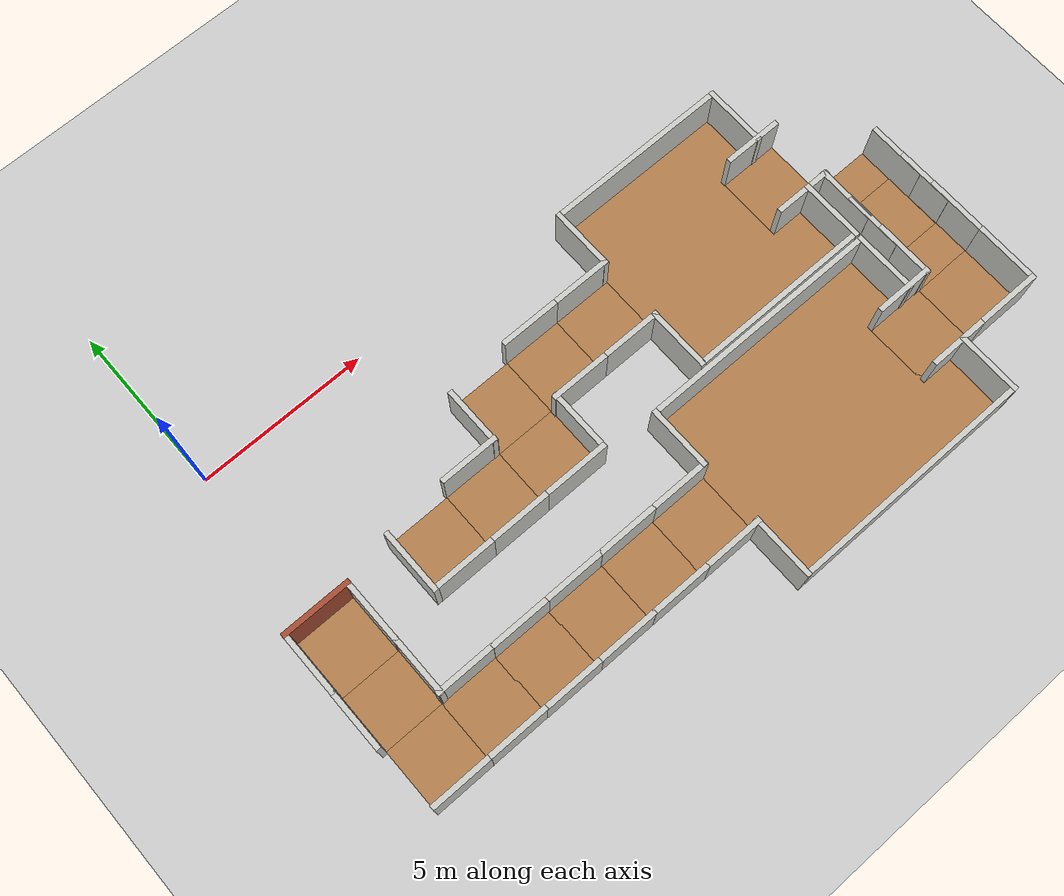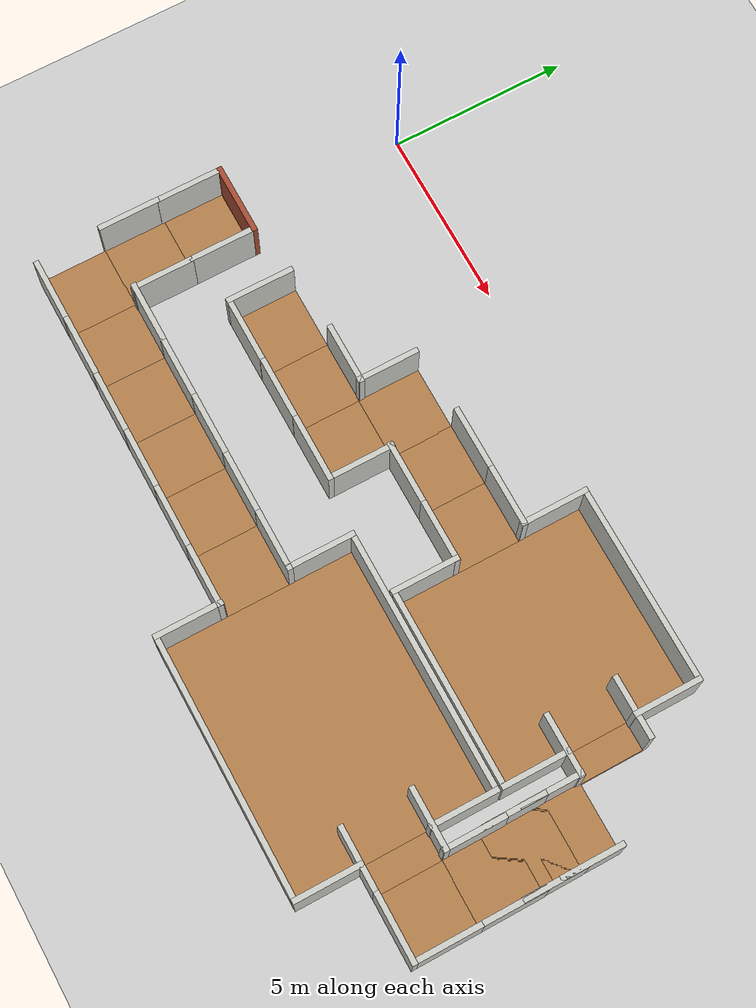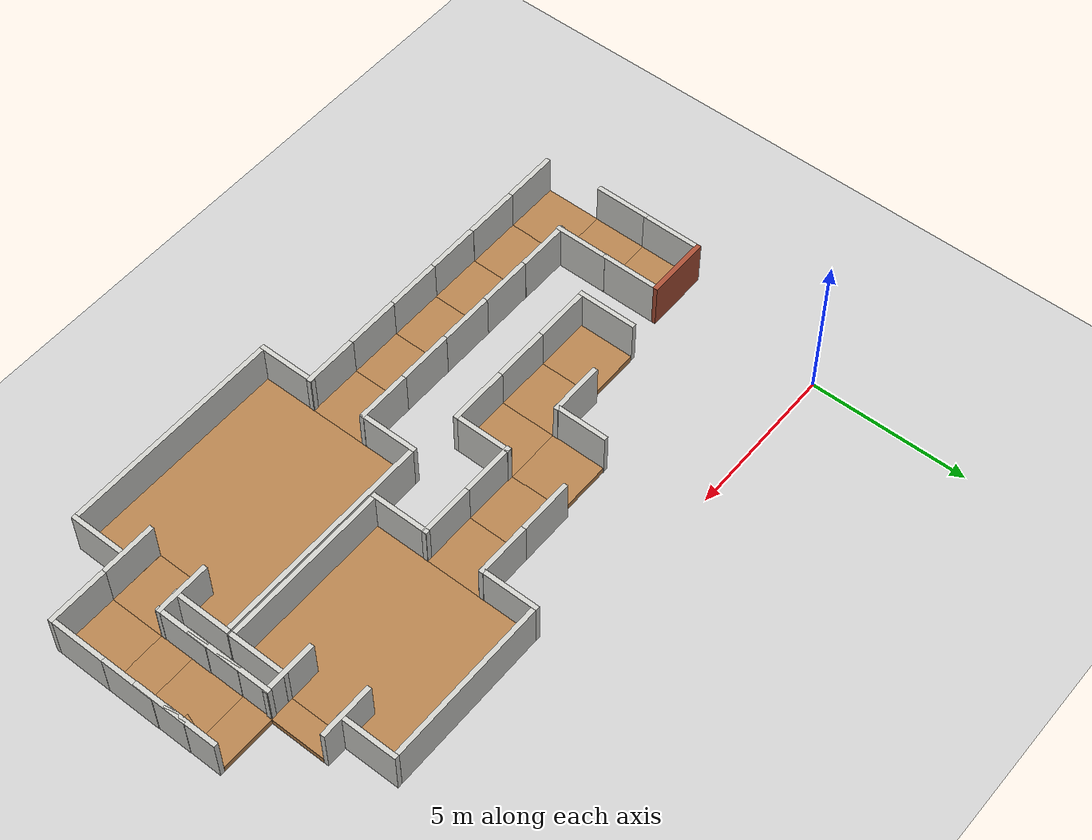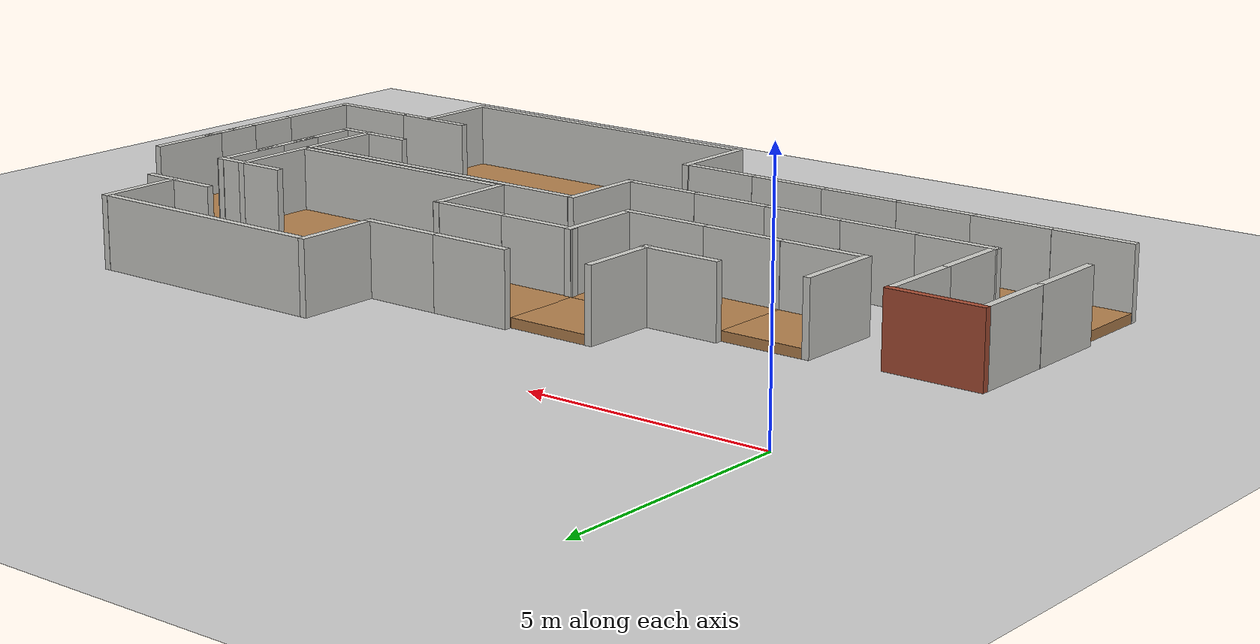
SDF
<sdf version="1.6">
 <world name="default">
  <model name="ground_plane">
   <static>1</static>
   <link name="link">
    <collision name="collision">
     <geometry><plane><normal>0 0 1</normal><size>100 100</size></plane></geometry>
     <surface><friction><ode><mu>100</mu><mu2>50</mu2></ode></friction></surface>
    </collision>
    <visual name="visual">
     <cast_shadows>0</cast_shadows>
     <geometry><plane><normal>0 0 1</normal><size>100 100</size></plane></geometry>
     <material>
      <script><uri>file://media/materials/scripts/gazebo.material</uri><name>Gazebo/Grey</name></script>
     </material>
    </visual>
   </link>
  </model>
  <model name="nerve_end_clone">
   <pose>0.033954 -5.68438 0 0 -0 2e-06</pose>
   <link name="Wall_0">
    <collision name="Wall_0_Collision">
     <geometry><box><size>1.76 1.75 0.2</size></box></geometry>
     <pose>0 0 0.1 0 -0 0</pose>
    </collision>
    <visual name="Wall_0_Visual">
     <pose>0 0 0.1 0 -0 0</pose>
     <geometry><box><size>1.76 1.75 0.2</size></box></geometry>
     <material>
      <script><uri>file://media/materials/scripts/gazebo.material</uri><name>Gazebo/Wood</name></script>
      <ambient>1 0.764706 0.305882 1</ambient>
     </material>
    </visual>
    <pose>-0.009 -0.064 0 0 -0 0</pose>
   </link>
   <link name="Wall_2">
    <collision name="Wall_2_Collision">
     <geometry><box><size>1.8 0.15 1.5</size></box></geometry>
     <pose>0 0 0.75 0 -0 0</pose>
    </collision>
    <visual name="Wall_2_Visual">
     <pose>0 0 0.75 0 -0 0</pose>
     <geometry><box><size>1.8 0.15 1.5</size></box></geometry>
     <material>
      <script><uri>file://media/materials/scripts/gazebo.material</uri><name>Gazebo/CeilingTiled</name></script>
      <ambient>1 0.764706 0.305882 1</ambient>
     </material>
    </visual>
    <pose>-0.95 -0.065 0 0 0 -1.5708</pose>
   </link>
   <link name="Wall_4">
    <collision name="Wall_4_Collision">
     <geometry><box><size>1.8 0.15 1.5</size></box></geometry>
     <pose>0 0 0.75 0 -0 0</pose>
    </collision>
    <visual name="Wall_4_Visual">
     <pose>0 0 0.75 0 -0 0</pose>
     <geometry><box><size>1.8 0.15 1.5</size></box></geometry>
     <material>
      <script><uri>file://media/materials/scripts/gazebo.material</uri><name>Gazebo/CeilingTiled</name></script>
      <ambient>1 0.764706 0.305882 1</ambient>
     </material>
    </visual>
    <pose>0.95 -0.065 0 0 0 -1.5708</pose>
   </link>
   <link name="Wall_6">
    <collision name="Wall_6_Collision">
     <geometry><box><size>2.05 0.15 1.5</size></box></geometry>
     <pose>0 0 0.75 0 -0 0</pose>
    </collision>
    <visual name="Wall_6_Visual">
     <pose>0 0 0.75 0 -0 0</pose>
     <geometry><box><size>2.05 0.15 1.5</size></box></geometry>
     <material>
      <script><uri>file://media/materials/scripts/gazebo.material</uri><name>Gazebo/Bricks</name></script>
      <ambient>0.996078 0.47451 0.0196078 1</ambient>
     </material>
    </visual>
    <pose>0 0.89 0 0 -0 0</pose>
   </link>
   <static>1</static>
  </model>
  <model name="nerve_room_3x4">
   <pose>12.9907 -9.16925 0 0 -0 1.5708</pose>
   <link name="Wall_11">
    <collision name="Wall_11_Collision">
     <geometry><box><size>7 0.15 1.5</size></box></geometry>
     <pose>0 0 0.75 0 -0 0</pose>
    </collision>
    <visual name="Wall_11_Visual">
     <pose>0 0 0.75 0 -0 0</pose>
     <geometry><box><size>7 0.15 1.5</size></box></geometry>
     <material>
      <script><uri>file://media/materials/scripts/gazebo.material</uri><name>Gazebo/CeilingTiled</name></script>
      <ambient>1 0.764706 0.305882 1</ambient>
     </material>
    </visual>
    <pose>-2.69862 -0.000423 0 0 0 -1.5708</pose>
   </link>
   <link name="Wall_13">
    <collision name="Wall_13_Collision">
     <geometry><box><size>7 0.15 1.5</size></box></geometry>
     <pose>0 0 0.75 0 -0 0</pose>
    </collision>
    <visual name="Wall_13_Visual">
     <pose>0 0 0.75 0 -0 0</pose>
     <geometry><box><size>7 0.15 1.5</size></box></geometry>
     <material>
      <script><uri>file://media/materials/scripts/gazebo.material</uri><name>Gazebo/CeilingTiled</name></script>
      <ambient>1 0.764706 0.305882 1</ambient>
     </material>
    </visual>
    <pose>2.69862 -0.000308 0 0 0 -1.5708</pose>
   </link>
   <link name="Wall_15">
    <collision name="Wall_15_Collision">
     <geometry><box><size>1.9 0.15 1.5</size></box></geometry>
     <pose>0 0 0.75 0 -0 0</pose>
    </collision>
    <visual name="Wall_15_Visual">
     <pose>0 0 0.75 0 -0 0</pose>
     <geometry><box><size>1.9 0.15 1.5</size></box></geometry>
     <material>
      <script><uri>file://media/materials/scripts/gazebo.material</uri><name>Gazebo/CeilingTiled</name></script>
      <ambient>1 0.764706 0.305882 1</ambient>
     </material>
    </visual>
    <pose>-1.82276 -3.57547 0 0 -0 0</pose>
   </link>
   <link name="Wall_17">
    <collision name="Wall_17_Collision">
     <geometry><box><size>1.9 0.15 1.5</size></box></geometry>
     <pose>0 0 0.75 0 -0 0</pose>
    </collision>
    <visual name="Wall_17_Visual">
     <pose>0 0 0.75 0 -0 0</pose>
     <geometry><box><size>1.9 0.15 1.5</size></box></geometry>
     <material>
      <script><uri>file://media/materials/scripts/gazebo.material</uri><name>Gazebo/CeilingTiled</name></script>
      <ambient>1 0.764706 0.305882 1</ambient>
     </material>
    </visual>
    <pose>-1.82217 3.57448 0 0 -0 0</pose>
   </link>
   <link name="Wall_19">
    <collision name="Wall_19_Collision">
     <geometry><box><size>1.9 0.15 1.5</size></box></geometry>
     <pose>0 0 0.75 0 -0 0</pose>
    </collision>
    <visual name="Wall_19_Visual">
     <pose>0 0 0.75 0 -0 0</pose>
     <geometry><box><size>1.9 0.15 1.5</size></box></geometry>
     <material>
      <script><uri>file://media/materials/scripts/gazebo.material</uri><name>Gazebo/CeilingTiled</name></script>
      <ambient>1 0.764706 0.305882 1</ambient>
     </material>
    </visual>
    <pose>1.82197 3.57547 0 0 -0 0</pose>
   </link>
   <link name="Wall_21">
    <collision name="Wall_21_Collision">
     <geometry><box><size>1.9 0.15 1.5</size></box></geometry>
     <pose>0 0 0.75 0 -0 0</pose>
    </collision>
    <visual name="Wall_21_Visual">
     <pose>0 0 0.75 0 -0 0</pose>
     <geometry><box><size>1.9 0.15 1.5</size></box></geometry>
     <material>
      <script><uri>file://media/materials/scripts/gazebo.material</uri><name>Gazebo/CeilingTiled</name></script>
      <ambient>1 0.764706 0.305882 1</ambient>
     </material>
    </visual>
    <pose>1.82281 -3.57503 0 0 -0 0</pose>
   </link>
   <link name="Wall_6">
    <collision name="Wall_6_Collision">
     <geometry><box><size>7 5.25 0.2</size></box></geometry>
     <pose>0 0 0.1 0 -0 0</pose>
    </collision>
    <visual name="Wall_6_Visual">
     <pose>0 0 0.1 0 -0 0</pose>
     <geometry><box><size>7 5.25 0.2</size></box></geometry>
     <material>
      <script><uri>file://media/materials/scripts/gazebo.material</uri><name>Gazebo/Wood</name></script>
      <ambient>1 0.764706 0.305882 1</ambient>
     </material>
    </visual>
    <pose>-0.001169 -0.000255 0 0 -0 1.5708</pose>
   </link>
   <static>1</static>
  </model>
  <model name="nerve_room_3x3">
   <pose>13.8713 -3.57836 0 0 0 -1.5708</pose>
   <link name="Wall_11">
    <collision name="Wall_11_Collision">
     <geometry><box><size>5.25 0.15 1.5</size></box></geometry>
     <pose>0 0 0.75 0 -0 0</pose>
    </collision>
    <visual name="Wall_11_Visual">
     <pose>0 0 0.75 0 -0 0</pose>
     <geometry><box><size>5.25 0.15 1.5</size></box></geometry>
     <material>
      <script><uri>file://media/materials/scripts/gazebo.material</uri><name>Gazebo/CeilingTiled</name></script>
      <ambient>1 0.764706 0.305882 1</ambient>
     </material>
    </visual>
    <pose>-2.69653 -0.003278 0 0 0 -1.5708</pose>
   </link>
   <link name="Wall_13">
    <collision name="Wall_13_Collision">
     <geometry><box><size>5.25 0.15 1.5</size></box></geometry>
     <pose>0 0 0.75 0 -0 0</pose>
    </collision>
    <visual name="Wall_13_Visual">
     <pose>0 0 0.75 0 -0 0</pose>
     <geometry><box><size>5.25 0.15 1.5</size></box></geometry>
     <material>
      <script><uri>file://media/materials/scripts/gazebo.material</uri><name>Gazebo/CeilingTiled</name></script>
      <ambient>1 0.764706 0.305882 1</ambient>
     </material>
    </visual>
    <pose>2.69688 -0.000452 0 0 0 -1.5708</pose>
   </link>
   <link name="Wall_15">
    <collision name="Wall_15_Collision">
     <geometry><box><size>1.9 0.15 1.5</size></box></geometry>
     <pose>0 0 0.75 0 -0 0</pose>
    </collision>
    <visual name="Wall_15_Visual">
     <pose>0 0 0.75 0 -0 0</pose>
     <geometry><box><size>1.9 0.15 1.5</size></box></geometry>
     <material>
      <script><uri>file://media/materials/scripts/gazebo.material</uri><name>Gazebo/CeilingTiled</name></script>
      <ambient>1 0.764706 0.305882 1</ambient>
     </material>
    </visual>
    <pose>-1.82279 -2.70217 0 0 -0 0</pose>
   </link>
   <link name="Wall_17">
    <collision name="Wall_17_Collision">
     <geometry><box><size>1.9 0.15 1.5</size></box></geometry>
     <pose>0 0 0.75 0 -0 0</pose>
    </collision>
    <visual name="Wall_17_Visual">
     <pose>0 0 0.75 0 -0 0</pose>
     <geometry><box><size>1.9 0.15 1.5</size></box></geometry>
     <material>
      <script><uri>file://media/materials/scripts/gazebo.material</uri><name>Gazebo/CeilingTiled</name></script>
      <ambient>1 0.764706 0.305882 1</ambient>
     </material>
    </visual>
    <pose>-1.82219 2.69878 0 0 -0 0</pose>
   </link>
   <link name="Wall_19">
    <collision name="Wall_19_Collision">
     <geometry><box><size>1.9 0.15 1.5</size></box></geometry>
     <pose>0 0 0.75 0 -0 0</pose>
    </collision>
    <visual name="Wall_19_Visual">
     <pose>0 0 0.75 0 -0 0</pose>
     <geometry><box><size>1.9 0.15 1.5</size></box></geometry>
     <material>
      <script><uri>file://media/materials/scripts/gazebo.material</uri><name>Gazebo/CeilingTiled</name></script>
      <ambient>1 0.764706 0.305882 1</ambient>
     </material>
    </visual>
    <pose>1.82194 2.70217 0 0 -0 0</pose>
   </link>
   <link name="Wall_21">
    <collision name="Wall_21_Collision">
     <geometry><box><size>1.9 0.15 1.5</size></box></geometry>
     <pose>0 0 0.75 0 -0 0</pose>
    </collision>
    <visual name="Wall_21_Visual">
     <pose>0 0 0.75 0 -0 0</pose>
     <geometry><box><size>1.9 0.15 1.5</size></box></geometry>
     <material>
      <script><uri>file://media/materials/scripts/gazebo.material</uri><name>Gazebo/CeilingTiled</name></script>
      <ambient>1 0.764706 0.305882 1</ambient>
     </material>
    </visual>
    <pose>1.82279 -2.70173 0 0 -0 0</pose>
   </link>
   <link name="Wall_6">
    <collision name="Wall_6_Collision">
     <geometry><box><size>5.26 5.25 0.2</size></box></geometry>
     <pose>0 0 0.1 0 -0 0</pose>
    </collision>
    <visual name="Wall_6_Visual">
     <pose>0 0 0.1 0 -0 0</pose>
     <geometry><box><size>5.26 5.25 0.2</size></box></geometry>
     <material>
      <script><uri>file://media/materials/scripts/gazebo.material</uri><name>Gazebo/Wood</name></script>
      <ambient>1 0.764706 0.305882 1</ambient>
     </material>
    </visual>
    <pose>-0.001194 0.003047 0 0 -0 1.5708</pose>
   </link>
   <static>1</static>
  </model>
  <model name="nerve_onewall_clone">
   <pose>0.01829 -9.25795 0 0 -0 1.5708</pose>
   <link name="Wall_0">
    <collision name="Wall_0_Collision">
     <geometry><box><size>1.76 1.75 0.2</size></box></geometry>
     <pose>0 0 0.1 0 -0 0</pose>
    </collision>
    <visual name="Wall_0_Visual">
     <pose>0 0 0.1 0 -0 0</pose>
     <geometry><box><size>1.76 1.75 0.2</size></box></geometry>
     <material>
      <script><uri>file://media/materials/scripts/gazebo.material</uri><name>Gazebo/Wood</name></script>
      <ambient>1 0.764706 0.305882 1</ambient>
     </material>
    </visual>
    <pose>0.0775 -0.002 0 0 -0 3.14159</pose>
   </link>
   <link name="Wall_2">
    <collision name="Wall_2_Collision">
     <geometry><box><size>1.75 0.15 1.5</size></box></geometry>
     <pose>0 0 0.75 0 -0 0</pose>
    </collision>
    <visual name="Wall_2_Visual">
     <pose>0 0 0.75 0 -0 0</pose>
     <geometry><box><size>1.75 0.15 1.5</size></box></geometry>
     <material>
      <script><uri>file://media/materials/scripts/gazebo.material</uri><name>Gazebo/CeilingTiled</name></script>
      <ambient>1 0.764706 0.305882 1</ambient>
     </material>
    </visual>
    <pose>-0.8825 0.002 0 0 0 -1.5708</pose>
   </link>
   <static>1</static>
  </model>
  <model name="nerve_straight_clone_0_clone_1">
   <pose>8.6208 -9.18716 0 0 0 -1.5708</pose>
   <link name="Wall_0">
    <collision name="Wall_0_Collision">
     <geometry><box><size>1.76 1.75 0.2</size></box></geometry>
     <pose>0 0 0.1 0 -0 0</pose>
    </collision>
    <visual name="Wall_0_Visual">
     <pose>0 0 0.1 0 -0 0</pose>
     <geometry><box><size>1.76 1.75 0.2</size></box></geometry>
     <material>
      <script><uri>file://media/materials/scripts/gazebo.material</uri><name>Gazebo/Wood</name></script>
      <ambient>1 0.764706 0.305882 1</ambient>
     </material>
    </visual>
    <pose>0.005 -0.002 0 0 -0 3.14159</pose>
   </link>
   <link name="Wall_2">
    <collision name="Wall_2_Collision">
     <geometry><box><size>1.75 0.15 1.5</size></box></geometry>
     <pose>0 0 0.75 0 -0 0</pose>
    </collision>
    <visual name="Wall_2_Visual">
     <pose>0 0 0.75 0 -0 0</pose>
     <geometry><box><size>1.75 0.15 1.5</size></box></geometry>
     <material>
      <script><uri>file://media/materials/scripts/gazebo.material</uri><name>Gazebo/CeilingTiled</name></script>
      <ambient>1 0.764706 0.305882 1</ambient>
     </material>
    </visual>
    <pose>-0.955 0.002 0 0 0 -1.5708</pose>
   </link>
   <link name="Wall_4">
    <collision name="Wall_4_Collision">
     <geometry><box><size>1.75 0.15 1.5</size></box></geometry>
     <pose>0 0 0.75 0 -0 0</pose>
    </collision>
    <visual name="Wall_4_Visual">
     <pose>0 0 0.75 0 -0 0</pose>
     <geometry><box><size>1.75 0.15 1.5</size></box></geometry>
     <material>
      <script><uri>file://media/materials/scripts/gazebo.material</uri><name>Gazebo/CeilingTiled</name></script>
      <ambient>1 0.764706 0.305882 1</ambient>
     </material>
    </visual>
    <pose>0.955 0.002 0 0 0 -1.5708</pose>
   </link>
   <static>1</static>
  </model>
  <model name="nerve_straight_clone_0_clone_0_clone_1">
   <pose>8.6286 -3.57606 0 0 0 -1.5708</pose>
   <link name="Wall_0">
    <collision name="Wall_0_Collision">
     <geometry><box><size>1.76 1.75 0.2</size></box></geometry>
     <pose>0 0 0.1 0 -0 0</pose>
    </collision>
    <visual name="Wall_0_Visual">
     <pose>0 0 0.1 0 -0 0</pose>
     <geometry><box><size>1.76 1.75 0.2</size></box></geometry>
     <material>
      <script><uri>file://media/materials/scripts/gazebo.material</uri><name>Gazebo/Wood</name></script>
      <ambient>1 0.764706 0.305882 1</ambient>
     </material>
    </visual>
    <pose>0.005 -0.002 0 0 -0 3.14159</pose>
   </link>
   <link name="Wall_2">
    <collision name="Wall_2_Collision">
     <geometry><box><size>1.75 0.15 1.5</size></box></geometry>
     <pose>0 0 0.75 0 -0 0</pose>
    </collision>
    <visual name="Wall_2_Visual">
     <pose>0 0 0.75 0 -0 0</pose>
     <geometry><box><size>1.75 0.15 1.5</size></box></geometry>
     <material>
      <script><uri>file://media/materials/scripts/gazebo.material</uri><name>Gazebo/CeilingTiled</name></script>
      <ambient>1 0.764706 0.305882 1</ambient>
     </material>
    </visual>
    <pose>-0.955 0.002 0 0 0 -1.5708</pose>
   </link>
   <link name="Wall_4">
    <collision name="Wall_4_Collision">
     <geometry><box><size>1.75 0.15 1.5</size></box></geometry>
     <pose>0 0 0.75 0 -0 0</pose>
    </collision>
    <visual name="Wall_4_Visual">
     <pose>0 0 0.75 0 -0 0</pose>
     <geometry><box><size>1.75 0.15 1.5</size></box></geometry>
     <material>
      <script><uri>file://media/materials/scripts/gazebo.material</uri><name>Gazebo/CeilingTiled</name></script>
      <ambient>1 0.764706 0.305882 1</ambient>
     </material>
    </visual>
    <pose>0.955 0.002 0 0 0 -1.5708</pose>
   </link>
   <static>1</static>
  </model>
  <model name="nerve_corner_clone_clone_clone_clone_clone_1">
   <pose>3.33213 -5.39258 0 0 -0 1.5708</pose>
   <link name="Wall_0">
    <collision name="Wall_0_Collision">
     <geometry><box><size>1.76 1.75 0.2</size></box></geometry>
     <pose>0 0 0.1 0 -0 0</pose>
    </collision>
    <visual name="Wall_0_Visual">
     <pose>0 0 0.1 0 -0 0</pose>
     <geometry><box><size>1.76 1.75 0.2</size></box></geometry>
     <material>
      <script><uri>file://media/materials/scripts/gazebo.material</uri><name>Gazebo/Wood</name></script>
      <ambient>1 0.764706 0.305882 1</ambient>
     </material>
    </visual>
    <pose>0.077507 -0.077007 0 0 -0 3.14159</pose>
   </link>
   <link name="Wall_2">
    <collision name="Wall_2_Collision">
     <geometry><box><size>1.75 0.15 1.5</size></box></geometry>
     <pose>0 0 0.75 0 -0 0</pose>
    </collision>
    <visual name="Wall_2_Visual">
     <pose>0 0 0.75 0 -0 0</pose>
     <geometry><box><size>1.75 0.15 1.5</size></box></geometry>
     <material>
      <script><uri>file://media/materials/scripts/gazebo.material</uri><name>Gazebo/CeilingTiled</name></script>
      <ambient>1 0.764706 0.305882 1</ambient>
     </material>
    </visual>
    <pose>-0.882493 -0.073007 0 0 0 -1.5708</pose>
   </link>
   <link name="Wall_4">
    <collision name="Wall_4_Collision">
     <geometry><box><size>1.91042 0.15 1.5</size></box></geometry>
     <pose>0 0 0.75 0 -0 0</pose>
    </collision>
    <visual name="Wall_4_Visual">
     <pose>0 0 0.75 0 -0 0</pose>
     <geometry><box><size>1.91042 0.15 1.5</size></box></geometry>
     <material>
      <script><uri>file://media/materials/scripts/gazebo.material</uri><name>Gazebo/CeilingTiled</name></script>
      <ambient>1 0.764706 0.305882 1</ambient>
     </material>
    </visual>
    <pose>-0.002284 0.876825 0 0 -0 3.1414</pose>
   </link>
   <static>1</static>
  </model>
  <model name="nerve_corner_clone_clone_clone_clone_clone_2">
   <pose>6.97959 -5.38885 0 0 0 -3.14159</pose>
   <link name="Wall_0">
    <collision name="Wall_0_Collision">
     <geometry><box><size>1.76 1.75 0.2</size></box></geometry>
     <pose>0 0 0.1 0 -0 0</pose>
    </collision>
    <visual name="Wall_0_Visual">
     <pose>0 0 0.1 0 -0 0</pose>
     <geometry><box><size>1.76 1.75 0.2</size></box></geometry>
     <material>
      <script><uri>file://media/materials/scripts/gazebo.material</uri><name>Gazebo/Wood</name></script>
      <ambient>1 0.764706 0.305882 1</ambient>
     </material>
    </visual>
    <pose>0.077507 -0.077007 0 0 -0 3.14159</pose>
   </link>
   <link name="Wall_2">
    <collision name="Wall_2_Collision">
     <geometry><box><size>1.75 0.15 1.5</size></box></geometry>
     <pose>0 0 0.75 0 -0 0</pose>
    </collision>
    <visual name="Wall_2_Visual">
     <pose>0 0 0.75 0 -0 0</pose>
     <geometry><box><size>1.75 0.15 1.5</size></box></geometry>
     <material>
      <script><uri>file://media/materials/scripts/gazebo.material</uri><name>Gazebo/CeilingTiled</name></script>
      <ambient>1 0.764706 0.305882 1</ambient>
     </material>
    </visual>
    <pose>-0.882493 -0.073007 0 0 0 -1.5708</pose>
   </link>
   <link name="Wall_4">
    <collision name="Wall_4_Collision">
     <geometry><box><size>1.91042 0.15 1.5</size></box></geometry>
     <pose>0 0 0.75 0 -0 0</pose>
    </collision>
    <visual name="Wall_4_Visual">
     <pose>0 0 0.75 0 -0 0</pose>
     <geometry><box><size>1.91042 0.15 1.5</size></box></geometry>
     <material>
      <script><uri>file://media/materials/scripts/gazebo.material</uri><name>Gazebo/CeilingTiled</name></script>
      <ambient>1 0.764706 0.305882 1</ambient>
     </material>
    </visual>
    <pose>-0.002284 0.876825 0 0 -0 3.1414</pose>
   </link>
   <static>1</static>
  </model>
  <model name="nerve_onewall_clone_clone_clone">
   <pose>6.8175 -3.57567 0 0 -0 3e-06</pose>
   <link name="Wall_0">
    <collision name="Wall_0_Collision">
     <geometry><box><size>1.76 1.75 0.2</size></box></geometry>
     <pose>0 0 0.1 0 -0 0</pose>
    </collision>
    <visual name="Wall_0_Visual">
     <pose>0 0 0.1 0 -0 0</pose>
     <geometry><box><size>1.76 1.75 0.2</size></box></geometry>
     <material>
      <script><uri>file://media/materials/scripts/gazebo.material</uri><name>Gazebo/Wood</name></script>
      <ambient>1 0.764706 0.305882 1</ambient>
     </material>
    </visual>
    <pose>0.0775 -0.002 0 0 -0 3.14159</pose>
   </link>
   <link name="Wall_2">
    <collision name="Wall_2_Collision">
     <geometry><box><size>1.75 0.15 1.5</size></box></geometry>
     <pose>0 0 0.75 0 -0 0</pose>
    </collision>
    <visual name="Wall_2_Visual">
     <pose>0 0 0.75 0 -0 0</pose>
     <geometry><box><size>1.75 0.15 1.5</size></box></geometry>
     <material>
      <script><uri>file://media/materials/scripts/gazebo.material</uri><name>Gazebo/CeilingTiled</name></script>
      <ambient>1 0.764706 0.305882 1</ambient>
     </material>
    </visual>
    <pose>-0.8825 0.002 0 0 0 -1.5708</pose>
   </link>
   <static>1</static>
  </model>
  <model name="nerve_straight_clone_0_clone_0_clone_1_clone">
   <pose>5.15395 -5.3136 0 0 0 -1.5708</pose>
   <link name="Wall_0">
    <collision name="Wall_0_Collision">
     <geometry><box><size>1.76 1.75 0.2</size></box></geometry>
     <pose>0 0 0.1 0 -0 0</pose>
    </collision>
    <visual name="Wall_0_Visual">
     <pose>0 0 0.1 0 -0 0</pose>
     <geometry><box><size>1.76 1.75 0.2</size></box></geometry>
     <material>
      <script><uri>file://media/materials/scripts/gazebo.material</uri><name>Gazebo/Wood</name></script>
      <ambient>1 0.764706 0.305882 1</ambient>
     </material>
    </visual>
    <pose>0.005 -0.002 0 0 -0 3.14159</pose>
   </link>
   <link name="Wall_2">
    <collision name="Wall_2_Collision">
     <geometry><box><size>1.75 0.15 1.5</size></box></geometry>
     <pose>0 0 0.75 0 -0 0</pose>
    </collision>
    <visual name="Wall_2_Visual">
     <pose>0 0 0.75 0 -0 0</pose>
     <geometry><box><size>1.75 0.15 1.5</size></box></geometry>
     <material>
      <script><uri>file://media/materials/scripts/gazebo.material</uri><name>Gazebo/CeilingTiled</name></script>
      <ambient>1 0.764706 0.305882 1</ambient>
     </material>
    </visual>
    <pose>-0.955 0.002 0 0 0 -1.5708</pose>
   </link>
   <link name="Wall_4">
    <collision name="Wall_4_Collision">
     <geometry><box><size>1.75 0.15 1.5</size></box></geometry>
     <pose>0 0 0.75 0 -0 0</pose>
    </collision>
    <visual name="Wall_4_Visual">
     <pose>0 0 0.75 0 -0 0</pose>
     <geometry><box><size>1.75 0.15 1.5</size></box></geometry>
     <material>
      <script><uri>file://media/materials/scripts/gazebo.material</uri><name>Gazebo/CeilingTiled</name></script>
      <ambient>1 0.764706 0.305882 1</ambient>
     </material>
    </visual>
    <pose>0.955 0.002 0 0 0 -1.5708</pose>
   </link>
   <static>1</static>
  </model>
  <model name="nerve_corner_clone_clone_1_clone">
   <pose>18.2225 -9.23029 0 0 0 -3.14159</pose>
   <link name="Wall_0">
    <collision name="Wall_0_Collision">
     <geometry><box><size>1.76 1.75 0.2</size></box></geometry>
     <pose>0 0 0.1 0 -0 0</pose>
    </collision>
    <visual name="Wall_0_Visual">
     <pose>0 0 0.1 0 -0 0</pose>
     <geometry><box><size>1.76 1.75 0.2</size></box></geometry>
     <material>
      <script><uri>file://media/materials/scripts/gazebo.material</uri><name>Gazebo/Wood</name></script>
      <ambient>1 0.764706 0.305882 1</ambient>
     </material>
    </visual>
    <pose>0.077507 -0.077007 0 0 -0 3.14159</pose>
   </link>
   <link name="Wall_2">
    <collision name="Wall_2_Collision">
     <geometry><box><size>1.75 0.15 1.5</size></box></geometry>
     <pose>0 0 0.75 0 -0 0</pose>
    </collision>
    <visual name="Wall_2_Visual">
     <pose>0 0 0.75 0 -0 0</pose>
     <geometry><box><size>1.75 0.15 1.5</size></box></geometry>
     <material>
      <script><uri>file://media/materials/scripts/gazebo.material</uri><name>Gazebo/CeilingTiled</name></script>
      <ambient>1 0.764706 0.305882 1</ambient>
     </material>
    </visual>
    <pose>-0.882493 -0.073007 0 0 0 -1.5708</pose>
   </link>
   <link name="Wall_4">
    <collision name="Wall_4_Collision">
     <geometry><box><size>1.91042 0.15 1.5</size></box></geometry>
     <pose>0 0 0.75 0 -0 0</pose>
    </collision>
    <visual name="Wall_4_Visual">
     <pose>0 0 0.75 0 -0 0</pose>
     <geometry><box><size>1.91042 0.15 1.5</size></box></geometry>
     <material>
      <script><uri>file://media/materials/scripts/gazebo.material</uri><name>Gazebo/CeilingTiled</name></script>
      <ambient>1 0.764706 0.305882 1</ambient>
     </material>
    </visual>
    <pose>-0.002284 0.876825 0 0 -0 3.1414</pose>
   </link>
   <static>1</static>
  </model>
  <model name="nerve_straight_clone_0_clone_1_clone_0_clone_0">
   <pose>10.3746 -3.57558 0 0 0 -1.5708</pose>
   <link name="Wall_0">
    <collision name="Wall_0_Collision">
     <geometry><box><size>1.76 1.75 0.2</size></box></geometry>
     <pose>0 0 0.1 0 -0 0</pose>
    </collision>
    <visual name="Wall_0_Visual">
     <pose>0 0 0.1 0 -0 0</pose>
     <geometry><box><size>1.76 1.75 0.2</size></box></geometry>
     <material>
      <script><uri>file://media/materials/scripts/gazebo.material</uri><name>Gazebo/Wood</name></script>
      <ambient>1 0.764706 0.305882 1</ambient>
     </material>
    </visual>
    <pose>0.005 -0.002 0 0 -0 3.14159</pose>
   </link>
   <link name="Wall_2">
    <collision name="Wall_2_Collision">
     <geometry><box><size>1.75 0.15 1.5</size></box></geometry>
     <pose>0 0 0.75 0 -0 0</pose>
    </collision>
    <visual name="Wall_2_Visual">
     <pose>0 0 0.75 0 -0 0</pose>
     <geometry><box><size>1.75 0.15 1.5</size></box></geometry>
     <material>
      <script><uri>file://media/materials/scripts/gazebo.material</uri><name>Gazebo/CeilingTiled</name></script>
      <ambient>1 0.764706 0.305882 1</ambient>
     </material>
    </visual>
    <pose>-0.955 0.002 0 0 0 -1.5708</pose>
   </link>
   <link name="Wall_4">
    <collision name="Wall_4_Collision">
     <geometry><box><size>1.75 0.15 1.5</size></box></geometry>
     <pose>0 0 0.75 0 -0 0</pose>
    </collision>
    <visual name="Wall_4_Visual">
     <pose>0 0 0.75 0 -0 0</pose>
     <geometry><box><size>1.75 0.15 1.5</size></box></geometry>
     <material>
      <script><uri>file://media/materials/scripts/gazebo.material</uri><name>Gazebo/CeilingTiled</name></script>
      <ambient>1 0.764706 0.305882 1</ambient>
     </material>
    </visual>
    <pose>0.955 0.002 0 0 0 -1.5708</pose>
   </link>
   <static>1</static>
  </model>
  <model name="nerve_straight_clone_0_clone_1_clone_0_clone_1">
   <pose>6.88265 -9.18852 0 0 0 -1.5708</pose>
   <link name="Wall_0">
    <collision name="Wall_0_Collision">
     <geometry><box><size>1.76 1.75 0.2</size></box></geometry>
     <pose>0 0 0.1 0 -0 0</pose>
    </collision>
    <visual name="Wall_0_Visual">
     <pose>0 0 0.1 0 -0 0</pose>
     <geometry><box><size>1.76 1.75 0.2</size></box></geometry>
     <material>
      <script><uri>file://media/materials/scripts/gazebo.material</uri><name>Gazebo/Wood</name></script>
      <ambient>1 0.764706 0.305882 1</ambient>
     </material>
    </visual>
    <pose>0.005 -0.002 0 0 -0 3.14159</pose>
   </link>
   <link name="Wall_2">
    <collision name="Wall_2_Collision">
     <geometry><box><size>1.75 0.15 1.5</size></box></geometry>
     <pose>0 0 0.75 0 -0 0</pose>
    </collision>
    <visual name="Wall_2_Visual">
     <pose>0 0 0.75 0 -0 0</pose>
     <geometry><box><size>1.75 0.15 1.5</size></box></geometry>
     <material>
      <script><uri>file://media/materials/scripts/gazebo.material</uri><name>Gazebo/CeilingTiled</name></script>
      <ambient>1 0.764706 0.305882 1</ambient>
     </material>
    </visual>
    <pose>-0.955 0.002 0 0 0 -1.5708</pose>
   </link>
   <link name="Wall_4">
    <collision name="Wall_4_Collision">
     <geometry><box><size>1.75 0.15 1.5</size></box></geometry>
     <pose>0 0 0.75 0 -0 0</pose>
    </collision>
    <visual name="Wall_4_Visual">
     <pose>0 0 0.75 0 -0 0</pose>
     <geometry><box><size>1.75 0.15 1.5</size></box></geometry>
     <material>
      <script><uri>file://media/materials/scripts/gazebo.material</uri><name>Gazebo/CeilingTiled</name></script>
      <ambient>1 0.764706 0.305882 1</ambient>
     </material>
    </visual>
    <pose>0.955 0.002 0 0 0 -1.5708</pose>
   </link>
   <static>1</static>
  </model>
  <model name="nerve_straight_clone_0_clone_1_clone_0_clone_2">
   <pose>5.17661 -9.18701 0 0 0 -1.5708</pose>
   <link name="Wall_0">
    <collision name="Wall_0_Collision">
     <geometry><box><size>1.76 1.75 0.2</size></box></geometry>
     <pose>0 0 0.1 0 -0 0</pose>
    </collision>
    <visual name="Wall_0_Visual">
     <pose>0 0 0.1 0 -0 0</pose>
     <geometry><box><size>1.76 1.75 0.2</size></box></geometry>
     <material>
      <script><uri>file://media/materials/scripts/gazebo.material</uri><name>Gazebo/Wood</name></script>
      <ambient>1 0.764706 0.305882 1</ambient>
     </material>
    </visual>
    <pose>0.005 -0.002 0 0 -0 3.14159</pose>
   </link>
   <link name="Wall_2">
    <collision name="Wall_2_Collision">
     <geometry><box><size>1.75 0.15 1.5</size></box></geometry>
     <pose>0 0 0.75 0 -0 0</pose>
    </collision>
    <visual name="Wall_2_Visual">
     <pose>0 0 0.75 0 -0 0</pose>
     <geometry><box><size>1.75 0.15 1.5</size></box></geometry>
     <material>
      <script><uri>file://media/materials/scripts/gazebo.material</uri><name>Gazebo/CeilingTiled</name></script>
      <ambient>1 0.764706 0.305882 1</ambient>
     </material>
    </visual>
    <pose>-0.955 0.002 0 0 0 -1.5708</pose>
   </link>
   <link name="Wall_4">
    <collision name="Wall_4_Collision">
     <geometry><box><size>1.75 0.15 1.5</size></box></geometry>
     <pose>0 0 0.75 0 -0 0</pose>
    </collision>
    <visual name="Wall_4_Visual">
     <pose>0 0 0.75 0 -0 0</pose>
     <geometry><box><size>1.75 0.15 1.5</size></box></geometry>
     <material>
      <script><uri>file://media/materials/scripts/gazebo.material</uri><name>Gazebo/CeilingTiled</name></script>
      <ambient>1 0.764706 0.305882 1</ambient>
     </material>
    </visual>
    <pose>0.955 0.002 0 0 0 -1.5708</pose>
   </link>
   <static>1</static>
  </model>
  <model name="nerve_straight_clone_0_clone_1_clone_0_clone_3">
   <pose>3.45605 -9.18839 0 0 0 -1.5708</pose>
   <link name="Wall_0">
    <collision name="Wall_0_Collision">
     <geometry><box><size>1.76 1.75 0.2</size></box></geometry>
     <pose>0 0 0.1 0 -0 0</pose>
    </collision>
    <visual name="Wall_0_Visual">
     <pose>0 0 0.1 0 -0 0</pose>
     <geometry><box><size>1.76 1.75 0.2</size></box></geometry>
     <material>
      <script><uri>file://media/materials/scripts/gazebo.material</uri><name>Gazebo/Wood</name></script>
      <ambient>1 0.764706 0.305882 1</ambient>
     </material>
    </visual>
    <pose>0.005 -0.002 0 0 -0 3.14159</pose>
   </link>
   <link name="Wall_2">
    <collision name="Wall_2_Collision">
     <geometry><box><size>1.75 0.15 1.5</size></box></geometry>
     <pose>0 0 0.75 0 -0 0</pose>
    </collision>
    <visual name="Wall_2_Visual">
     <pose>0 0 0.75 0 -0 0</pose>
     <geometry><box><size>1.75 0.15 1.5</size></box></geometry>
     <material>
      <script><uri>file://media/materials/scripts/gazebo.material</uri><name>Gazebo/CeilingTiled</name></script>
      <ambient>1 0.764706 0.305882 1</ambient>
     </material>
    </visual>
    <pose>-0.955 0.002 0 0 0 -1.5708</pose>
   </link>
   <link name="Wall_4">
    <collision name="Wall_4_Collision">
     <geometry><box><size>1.75 0.15 1.5</size></box></geometry>
     <pose>0 0 0.75 0 -0 0</pose>
    </collision>
    <visual name="Wall_4_Visual">
     <pose>0 0 0.75 0 -0 0</pose>
     <geometry><box><size>1.75 0.15 1.5</size></box></geometry>
     <material>
      <script><uri>file://media/materials/scripts/gazebo.material</uri><name>Gazebo/CeilingTiled</name></script>
      <ambient>1 0.764706 0.305882 1</ambient>
     </material>
    </visual>
    <pose>0.955 0.002 0 0 0 -1.5708</pose>
   </link>
   <static>1</static>
  </model>
  <model name="nerve_straight_clone_0_clone_1_clone_0_clone_4">
   <pose>1.75603 -9.18083 0 0 0 -1.5708</pose>
   <link name="Wall_0">
    <collision name="Wall_0_Collision">
     <geometry><box><size>1.76 1.75 0.2</size></box></geometry>
     <pose>0 0 0.1 0 -0 0</pose>
    </collision>
    <visual name="Wall_0_Visual">
     <pose>0 0 0.1 0 -0 0</pose>
     <geometry><box><size>1.76 1.75 0.2</size></box></geometry>
     <material>
      <script><uri>file://media/materials/scripts/gazebo.material</uri><name>Gazebo/Wood</name></script>
      <ambient>1 0.764706 0.305882 1</ambient>
     </material>
    </visual>
    <pose>0.005 -0.002 0 0 -0 3.14159</pose>
   </link>
   <link name="Wall_2">
    <collision name="Wall_2_Collision">
     <geometry><box><size>1.75 0.15 1.5</size></box></geometry>
     <pose>0 0 0.75 0 -0 0</pose>
    </collision>
    <visual name="Wall_2_Visual">
     <pose>0 0 0.75 0 -0 0</pose>
     <geometry><box><size>1.75 0.15 1.5</size></box></geometry>
     <material>
      <script><uri>file://media/materials/scripts/gazebo.material</uri><name>Gazebo/CeilingTiled</name></script>
      <ambient>1 0.764706 0.305882 1</ambient>
     </material>
    </visual>
    <pose>-0.955 0.002 0 0 0 -1.5708</pose>
   </link>
   <link name="Wall_4">
    <collision name="Wall_4_Collision">
     <geometry><box><size>1.75 0.15 1.5</size></box></geometry>
     <pose>0 0 0.75 0 -0 0</pose>
    </collision>
    <visual name="Wall_4_Visual">
     <pose>0 0 0.75 0 -0 0</pose>
     <geometry><box><size>1.75 0.15 1.5</size></box></geometry>
     <material>
      <script><uri>file://media/materials/scripts/gazebo.material</uri><name>Gazebo/CeilingTiled</name></script>
      <ambient>1 0.764706 0.305882 1</ambient>
     </material>
    </visual>
    <pose>0.955 0.002 0 0 0 -1.5708</pose>
   </link>
   <static>1</static>
  </model>
  <model name="nerve_straight_clone_0_clone_clone_clone">
   <pose>0.033036 -7.44606 0 0 -0 3.14159</pose>
   <link name="Wall_0">
    <collision name="Wall_0_Collision">
     <geometry><box><size>1.76 1.75 0.2</size></box></geometry>
     <pose>0 0 0.1 0 -0 0</pose>
    </collision>
    <visual name="Wall_0_Visual">
     <pose>0 0 0.1 0 -0 0</pose>
     <geometry><box><size>1.76 1.75 0.2</size></box></geometry>
     <material>
      <script><uri>file://media/materials/scripts/gazebo.material</uri><name>Gazebo/Wood</name></script>
      <ambient>1 0.764706 0.305882 1</ambient>
     </material>
    </visual>
    <pose>0.005 -0.002 0 0 -0 3.14159</pose>
   </link>
   <link name="Wall_2">
    <collision name="Wall_2_Collision">
     <geometry><box><size>1.75 0.15 1.5</size></box></geometry>
     <pose>0 0 0.75 0 -0 0</pose>
    </collision>
    <visual name="Wall_2_Visual">
     <pose>0 0 0.75 0 -0 0</pose>
     <geometry><box><size>1.75 0.15 1.5</size></box></geometry>
     <material>
      <script><uri>file://media/materials/scripts/gazebo.material</uri><name>Gazebo/CeilingTiled</name></script>
      <ambient>1 0.764706 0.305882 1</ambient>
     </material>
    </visual>
    <pose>-0.955 0.002 0 0 0 -1.5708</pose>
   </link>
   <link name="Wall_4">
    <collision name="Wall_4_Collision">
     <geometry><box><size>1.75 0.15 1.5</size></box></geometry>
     <pose>0 0 0.75 0 -0 0</pose>
    </collision>
    <visual name="Wall_4_Visual">
     <pose>0 0 0.75 0 -0 0</pose>
     <geometry><box><size>1.75 0.15 1.5</size></box></geometry>
     <material>
      <script><uri>file://media/materials/scripts/gazebo.material</uri><name>Gazebo/CeilingTiled</name></script>
      <ambient>1 0.764706 0.305882 1</ambient>
     </material>
    </visual>
    <pose>0.955 0.002 0 0 0 -1.5708</pose>
   </link>
   <static>1</static>
  </model>
  <model name="nerve_straight_clone_0_clone_clone_clone_2">
   <pose>18.1255 -5.31574 0 0 -0 3.14159</pose>
   <link name="Wall_0">
    <collision name="Wall_0_Collision">
     <geometry><box><size>1.76 1.75 0.2</size></box></geometry>
     <pose>0 0 0.1 0 -0 0</pose>
    </collision>
    <visual name="Wall_0_Visual">
     <pose>0 0 0.1 0 -0 0</pose>
     <geometry><box><size>1.76 1.75 0.2</size></box></geometry>
     <material>
      <script><uri>file://media/materials/scripts/gazebo.material</uri><name>Gazebo/Wood</name></script>
      <ambient>1 0.764706 0.305882 1</ambient>
     </material>
    </visual>
    <pose>0.005 -0.002 0 0 -0 3.14159</pose>
   </link>
   <link name="Wall_2">
    <collision name="Wall_2_Collision">
     <geometry><box><size>1.75 0.15 1.5</size></box></geometry>
     <pose>0 0 0.75 0 -0 0</pose>
    </collision>
    <visual name="Wall_2_Visual">
     <pose>0 0 0.75 0 -0 0</pose>
     <geometry><box><size>1.75 0.15 1.5</size></box></geometry>
     <material>
      <script><uri>file://media/materials/scripts/gazebo.material</uri><name>Gazebo/CeilingTiled</name></script>
      <ambient>1 0.764706 0.305882 1</ambient>
     </material>
    </visual>
    <pose>-0.955 0.002 0 0 0 -1.5708</pose>
   </link>
   <link name="Wall_4">
    <collision name="Wall_4_Collision">
     <geometry><box><size>1.75 0.15 1.5</size></box></geometry>
     <pose>0 0 0.75 0 -0 0</pose>
    </collision>
    <visual name="Wall_4_Visual">
     <pose>0 0 0.75 0 -0 0</pose>
     <geometry><box><size>1.75 0.15 1.5</size></box></geometry>
     <material>
      <script><uri>file://media/materials/scripts/gazebo.material</uri><name>Gazebo/CeilingTiled</name></script>
      <ambient>1 0.764706 0.305882 1</ambient>
     </material>
    </visual>
    <pose>0.955 0.002 0 0 0 -1.5708</pose>
   </link>
   <static>1</static>
  </model>
  <model name="nerve_straight_clone_0_clone_clone_clone_2_clone">
   <pose>16.4 -9.15534 0 0 -0 1.57079</pose>
   <link name="Wall_0">
    <collision name="Wall_0_Collision">
     <geometry><box><size>1.76 1.75 0.2</size></box></geometry>
     <pose>0 0 0.1 0 -0 0</pose>
    </collision>
    <visual name="Wall_0_Visual">
     <pose>0 0 0.1 0 -0 0</pose>
     <geometry><box><size>1.76 1.75 0.2</size></box></geometry>
     <material>
      <script><uri>file://media/materials/scripts/gazebo.material</uri><name>Gazebo/Wood</name></script>
      <ambient>1 0.764706 0.305882 1</ambient>
     </material>
    </visual>
    <pose>0.005 -0.002 0 0 -0 3.14159</pose>
   </link>
   <link name="Wall_2">
    <collision name="Wall_2_Collision">
     <geometry><box><size>1.75 0.15 1.5</size></box></geometry>
     <pose>0 0 0.75 0 -0 0</pose>
    </collision>
    <visual name="Wall_2_Visual">
     <pose>0 0 0.75 0 -0 0</pose>
     <geometry><box><size>1.75 0.15 1.5</size></box></geometry>
     <material>
      <script><uri>file://media/materials/scripts/gazebo.material</uri><name>Gazebo/CeilingTiled</name></script>
      <ambient>1 0.764706 0.305882 1</ambient>
     </material>
    </visual>
    <pose>-0.955 0.002 0 0 0 -1.5708</pose>
   </link>
   <link name="Wall_4">
    <collision name="Wall_4_Collision">
     <geometry><box><size>1.75 0.15 1.5</size></box></geometry>
     <pose>0 0 0.75 0 -0 0</pose>
    </collision>
    <visual name="Wall_4_Visual">
     <pose>0 0 0.75 0 -0 0</pose>
     <geometry><box><size>1.75 0.15 1.5</size></box></geometry>
     <material>
      <script><uri>file://media/materials/scripts/gazebo.material</uri><name>Gazebo/CeilingTiled</name></script>
      <ambient>1 0.764706 0.305882 1</ambient>
     </material>
    </visual>
    <pose>0.955 0.002 0 0 0 -1.5708</pose>
   </link>
   <static>1</static>
  </model>
  <model name="nerve_straight_clone_0_clone_clone_clone_2_clone_clone">
   <pose>16.4 -3.57133 0 0 -0 1.57079</pose>
   <link name="Wall_0">
    <collision name="Wall_0_Collision">
     <geometry><box><size>1.76 1.75 0.2</size></box></geometry>
     <pose>0 0 0.1 0 -0 0</pose>
    </collision>
    <visual name="Wall_0_Visual">
     <pose>0 0 0.1 0 -0 0</pose>
     <geometry><box><size>1.76 1.75 0.2</size></box></geometry>
     <material>
      <script><uri>file://media/materials/scripts/gazebo.material</uri><name>Gazebo/Wood</name></script>
      <ambient>1 0.764706 0.305882 1</ambient>
     </material>
    </visual>
    <pose>0.005 -0.002 0 0 -0 3.14159</pose>
   </link>
   <link name="Wall_2">
    <collision name="Wall_2_Collision">
     <geometry><box><size>1.75 0.15 1.5</size></box></geometry>
     <pose>0 0 0.75 0 -0 0</pose>
    </collision>
    <visual name="Wall_2_Visual">
     <pose>0 0 0.75 0 -0 0</pose>
     <geometry><box><size>1.75 0.15 1.5</size></box></geometry>
     <material>
      <script><uri>file://media/materials/scripts/gazebo.material</uri><name>Gazebo/CeilingTiled</name></script>
      <ambient>1 0.764706 0.305882 1</ambient>
     </material>
    </visual>
    <pose>-0.955 0.002 0 0 0 -1.5708</pose>
   </link>
   <link name="Wall_4">
    <collision name="Wall_4_Collision">
     <geometry><box><size>1.75 0.15 1.5</size></box></geometry>
     <pose>0 0 0.75 0 -0 0</pose>
    </collision>
    <visual name="Wall_4_Visual">
     <pose>0 0 0.75 0 -0 0</pose>
     <geometry><box><size>1.75 0.15 1.5</size></box></geometry>
     <material>
      <script><uri>file://media/materials/scripts/gazebo.material</uri><name>Gazebo/CeilingTiled</name></script>
      <ambient>1 0.764706 0.305882 1</ambient>
     </material>
    </visual>
    <pose>0.955 0.002 0 0 0 -1.5708</pose>
   </link>
   <static>1</static>
  </model>
  <model name="nerve_straight_clone_0_clone_clone_clone_2_clone_0">
   <pose>18.1471 -7.41777 0 0 -0 3.14159</pose>
   <link name="Wall_0">
    <collision name="Wall_0_Collision">
     <geometry><box><size>1.76 1.75 0.2</size></box></geometry>
     <pose>0 0 0.1 0 -0 0</pose>
    </collision>
    <visual name="Wall_0_Visual">
     <pose>0 0 0.1 0 -0 0</pose>
     <geometry><box><size>1.76 1.75 0.2</size></box></geometry>
     <material>
      <script><uri>file://media/materials/scripts/gazebo.material</uri><name>Gazebo/Wood</name></script>
      <ambient>1 0.764706 0.305882 1</ambient>
     </material>
    </visual>
    <pose>0.005 -0.002 0 0 -0 3.14159</pose>
   </link>
   <link name="Wall_2">
    <collision name="Wall_2_Collision">
     <geometry><box><size>1.75 0.15 1.5</size></box></geometry>
     <pose>0 0 0.75 0 -0 0</pose>
    </collision>
    <visual name="Wall_2_Visual">
     <pose>0 0 0.75 0 -0 0</pose>
     <geometry><box><size>1.75 0.15 1.5</size></box></geometry>
     <material>
      <script><uri>file://media/materials/scripts/gazebo.material</uri><name>Gazebo/CeilingTiled</name></script>
      <ambient>1 0.764706 0.305882 1</ambient>
     </material>
    </visual>
    <pose>-0.955 0.002 0 0 0 -1.5708</pose>
   </link>
   <link name="Wall_4">
    <collision name="Wall_4_Collision">
     <geometry><box><size>1.75 0.15 1.5</size></box></geometry>
     <pose>0 0 0.75 0 -0 0</pose>
    </collision>
    <visual name="Wall_4_Visual">
     <pose>0 0 0.75 0 -0 0</pose>
     <geometry><box><size>1.75 0.15 1.5</size></box></geometry>
     <material>
      <script><uri>file://media/materials/scripts/gazebo.material</uri><name>Gazebo/CeilingTiled</name></script>
      <ambient>1 0.764706 0.305882 1</ambient>
     </material>
    </visual>
    <pose>0.955 0.002 0 0 0 -1.5708</pose>
   </link>
   <static>1</static>
  </model>
  <model name="nerve_straight_clone_0_clone_clone_clone_2_clone_1">
   <pose>18.1336 -6.32874 0 0 -0 3.14159</pose>
   <link name="Wall_0">
    <collision name="Wall_0_Collision">
     <geometry><box><size>1.76 1.75 0.2</size></box></geometry>
     <pose>0 0 0.1 0 -0 0</pose>
    </collision>
    <visual name="Wall_0_Visual">
     <pose>0 0 0.1 0 -0 0</pose>
     <geometry><box><size>1.76 1.75 0.2</size></box></geometry>
     <material>
      <script><uri>file://media/materials/scripts/gazebo.material</uri><name>Gazebo/Wood</name></script>
      <ambient>1 0.764706 0.305882 1</ambient>
     </material>
    </visual>
    <pose>0.005 -0.002 0 0 -0 3.14159</pose>
   </link>
   <link name="Wall_2">
    <collision name="Wall_2_Collision">
     <geometry><box><size>1.75 0.15 1.5</size></box></geometry>
     <pose>0 0 0.75 0 -0 0</pose>
    </collision>
    <visual name="Wall_2_Visual">
     <pose>0 0 0.75 0 -0 0</pose>
     <geometry><box><size>1.75 0.15 1.5</size></box></geometry>
     <material>
      <script><uri>file://media/materials/scripts/gazebo.material</uri><name>Gazebo/CeilingTiled</name></script>
      <ambient>1 0.764706 0.305882 1</ambient>
     </material>
    </visual>
    <pose>-0.955 0.002 0 0 0 -1.5708</pose>
   </link>
   <link name="Wall_4">
    <collision name="Wall_4_Collision">
     <geometry><box><size>1.75 0.15 1.5</size></box></geometry>
     <pose>0 0 0.75 0 -0 0</pose>
    </collision>
    <visual name="Wall_4_Visual">
     <pose>0 0 0.75 0 -0 0</pose>
     <geometry><box><size>1.75 0.15 1.5</size></box></geometry>
     <material>
      <script><uri>file://media/materials/scripts/gazebo.material</uri><name>Gazebo/CeilingTiled</name></script>
      <ambient>1 0.764706 0.305882 1</ambient>
     </material>
    </visual>
    <pose>0.955 0.002 0 0 0 -1.5708</pose>
   </link>
   <static>1</static>
  </model>
 </world>
</sdf>
